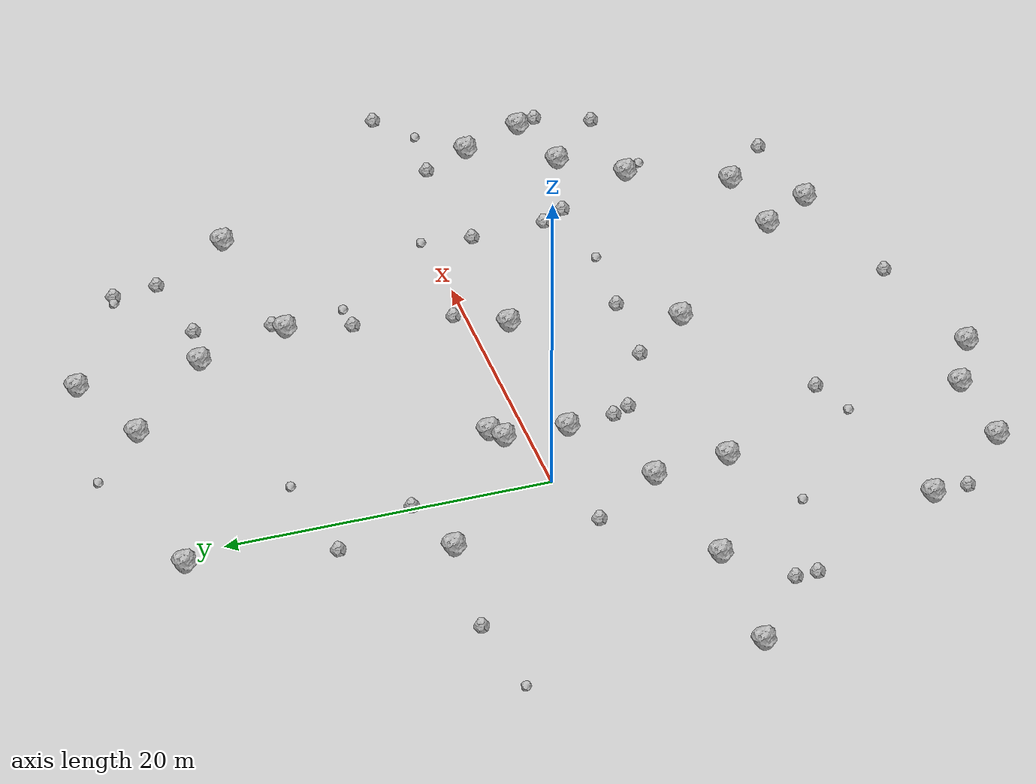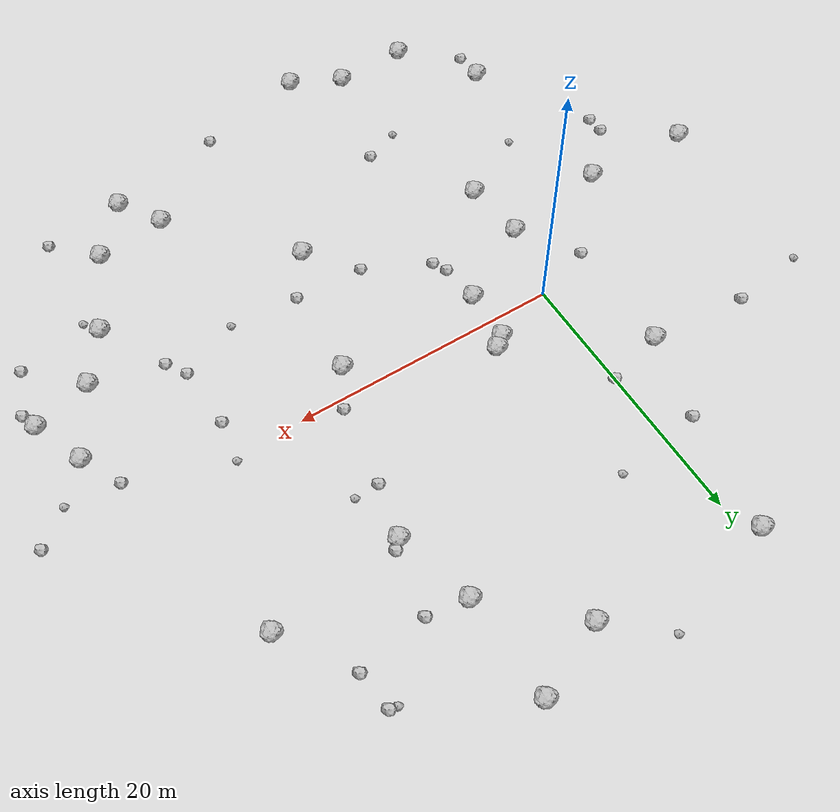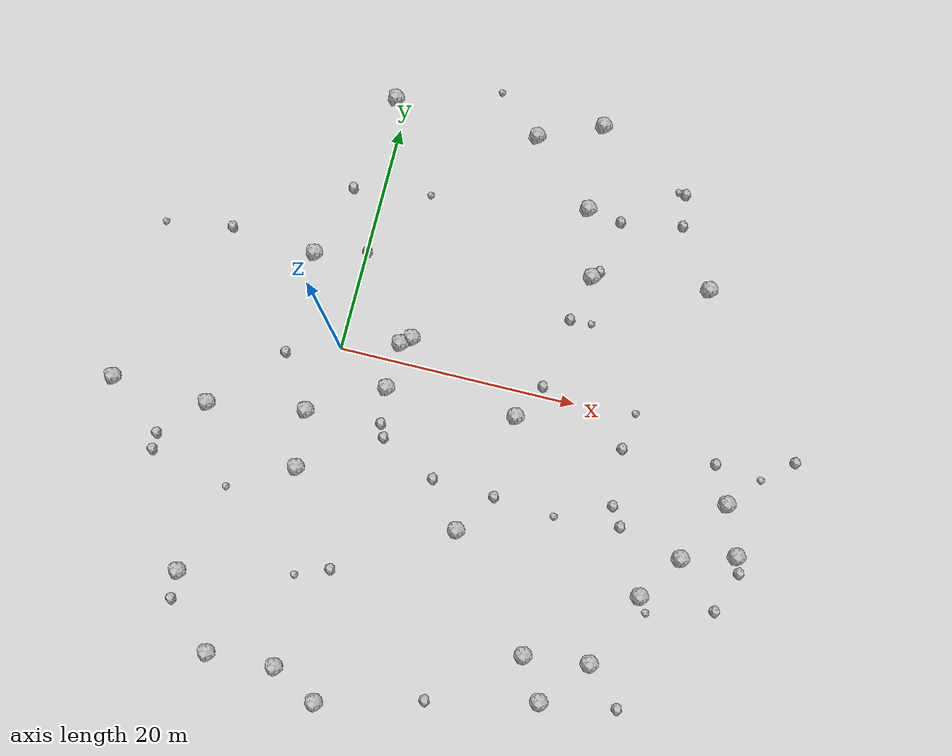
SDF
<sdf version="1.6">
 <world name="default">
  <include><uri>model://custom_ground</uri></include>
  <include><uri>model://sun</uri></include>
  <model name="rock1_0_0">
   <include><uri>model://rock1</uri><pose>4.722769837261527 1.522629581273435 0.5 0 0 0</pose></include>
  </model>
  <model name="rock1_0_1">
   <include><uri>model://rock1</uri><pose>-3.9891688747409297 -26.43252200253485 0.5 0 0 0</pose></include>
  </model>
  <model name="rock1_0_2">
   <include><uri>model://rock1</uri><pose>-9.582961832154771 -7.129383189320034 0.5 0 0 0</pose></include>
  </model>
  <model name="rock1_0_3">
   <include><uri>model://rock1</uri><pose>25.67066685512269 -20.027030334701024 0.5 0 0 0</pose></include>
  </model>
  <model name="rock1_0_4">
   <include><uri>model://rock1</uri><pose>4.540631685627254 -2.3999195949057714 0.5 0 0 0</pose></include>
  </model>
  <model name="rock1_0_5">
   <include><uri>model://rock1</uri><pose>20.43594853096844 -20.653183225990098 0.5 0 0 0</pose></include>
  </model>
  <model name="rock1_0_6">
   <include><uri>model://rock1</uri><pose>-17.76359626926095 -6.890915561591534 0.5 0 0 0</pose></include>
  </model>
  <model name="rock1_0_7">
   <include><uri>model://rock1</uri><pose>-1.022560300940608 22.69387455753236 0.5 0 0 0</pose></include>
  </model>
  <model name="rock1_0_8">
   <include><uri>model://rock1</uri><pose>-0.978680866877589 -10.558752813981215 0.5 0 0 0</pose></include>
  </model>
  <model name="rock1_0_9">
   <include><uri>model://rock1</uri><pose>17.17996941721217 24.4861453439568 0.5 0 0 0</pose></include>
  </model>
  <model name="rock1_0_10">
   <include><uri>model://rock1</uri><pose>5.264699876738938 -28.059158618863126 0.5 0 0 0</pose></include>
  </model>
  <model name="rock1_0_11">
   <include><uri>model://rock1</uri><pose>5.562285287720584 2.2056119319856577 0.5 0 0 0</pose></include>
  </model>
  <model name="rock1_0_12">
   <include><uri>model://rock1</uri><pose>12.961953235114379 -12.391206726731639 0.5 0 0 0</pose></include>
  </model>
  <model name="rock1_0_13">
   <include><uri>model://rock1</uri><pose>17.484339586572354 16.787691900462292 0.5 0 0 0</pose></include>
  </model>
  <model name="rock1_0_14">
   <include><uri>model://rock1</uri><pose>1.5112361324239032 -26.19524163940208 0.5 0 0 0</pose></include>
  </model>
  <model name="rock1_0_15">
   <include><uri>model://rock1</uri><pose>11.773759768425364 22.182301390779187 0.5 0 0 0</pose></include>
  </model>
  <model name="rock1_0_16">
   <include><uri>model://rock1</uri><pose>31.034075050161363 -10.28529207520964 0.5 0 0 0</pose></include>
  </model>
  <model name="rock1_0_17">
   <include><uri>model://rock1</uri><pose>28.450034182874177 -13.984544735497217 0.5 0 0 0</pose></include>
  </model>
  <model name="rock1_0_18">
   <include><uri>model://rock1</uri><pose>22.43879692771324 -23.821146042457407 0.5 0 0 0</pose></include>
  </model>
  <model name="rock1_0_19">
   <include><uri>model://rock1</uri><pose>35.40079748332063 -9.05072511468316 0.5 0 0 0</pose></include>
  </model>
  <model name="rock1_0_20">
   <include><uri>model://rock1</uri><pose>33.85666951743444 -5.115912305402052 0.5 0 0 0</pose></include>
  </model>
  <model name="rock1_0_21">
   <include><uri>model://rock1</uri><pose>-4.289096859611449 7.40284368862784 0.5 0 0 0</pose></include>
  </model>
  <model name="rock1_0_22">
   <include><uri>model://rock1</uri><pose>-1.468073630650526 -5.819344412199193 0.5 0 0 0</pose></include>
  </model>
  <model name="rock1_0_23">
   <include><uri>model://rock1</uri><pose>-8.040685558774154 -20.862407967158795 0.5 0 0 0</pose></include>
  </model>
  <model name="rock1_0_24">
   <include><uri>model://rock1</uri><pose>15.519145385335563 -2.1865867576316163 0.5 0 0 0</pose></include>
  </model>
  <model name="rock1_0_25">
   <include><uri>model://rock1</uri><pose>28.956954654316732 12.207446789412344 0.5 0 0 0</pose></include>
  </model>
  <model name="rock1_0_26">
   <include><uri>model://rock1</uri><pose>19.06600376842905 10.957989359607112 0.5 0 0 0</pose></include>
  </model>
  <model name="rock2_0_0">
   <include><uri>model://rock2</uri><pose>35.86238626600615 -10.31656989583508 0.3 0 0 0</pose></include>
  </model>
  <model name="rock2_0_1">
   <include><uri>model://rock2</uri><pose>20.45037724544808 16.342073221463536 0.3 0 0 0</pose></include>
  </model>
  <model name="rock2_0_2">
   <include><uri>model://rock2</uri><pose>4.8176310084578695 -5.3904361732760755 0.3 0 0 0</pose></include>
  </model>
  <model name="rock2_0_3">
   <include><uri>model://rock2</uri><pose>15.289379381229821 -9.034519548509927 0.3 0 0 0</pose></include>
  </model>
  <model name="rock2_0_4">
   <include><uri>model://rock2</uri><pose>38.687562532440204 -0.4293123871591469 0.3 0 0 0</pose></include>
  </model>
  <model name="rock2_0_5">
   <include><uri>model://rock2</uri><pose>17.140352257330328 0.8178198604435174 0.3 0 0 0</pose></include>
  </model>
  <model name="rock2_0_6">
   <include><uri>model://rock2</uri><pose>-12.949964424313361 -10.536893656231161 0.3 0 0 0</pose></include>
  </model>
  <model name="rock2_0_7">
   <include><uri>model://rock2</uri><pose>5.3269602024719624 -6.46967466327839 0.3 0 0 0</pose></include>
  </model>
  <model name="rock2_0_8">
   <include><uri>model://rock2</uri><pose>34.53421884672233 -13.71361628409009 0.3 0 0 0</pose></include>
  </model>
  <model name="rock2_0_9">
   <include><uri>model://rock2</uri><pose>25.687002975138938 17.2590276496975 0.3 0 0 0</pose></include>
  </model>
  <model name="rock2_0_10">
   <include><uri>model://rock2</uri><pose>25.366847194745503 20.083294864860548 0.3 0 0 0</pose></include>
  </model>
  <model name="rock2_0_11">
   <include><uri>model://rock2</uri><pose>25.788246771329867 -8.960757452583355 0.3 0 0 0</pose></include>
  </model>
  <model name="rock2_0_12">
   <include><uri>model://rock2</uri><pose>3.815596667148636 -17.82633322352133 0.3 0 0 0</pose></include>
  </model>
  <model name="rock2_0_13">
   <include><uri>model://rock2</uri><pose>18.103687575927772 6.9432492160919 0.3 0 0 0</pose></include>
  </model>
  <model name="rock2_0_14">
   <include><uri>model://rock2</uri><pose>-2.5666381233859603 13.869461619103923 0.3 0 0 0</pose></include>
  </model>
  <model name="rock2_0_15">
   <include><uri>model://rock2</uri><pose>24.867016889402926 -7.447371049224646 0.3 0 0 0</pose></include>
  </model>
  <model name="rock2_0_16">
   <include><uri>model://rock2</uri><pose>13.661434525210232 -25.874441411093745 0.3 0 0 0</pose></include>
  </model>
  <model name="rock2_0_17">
   <include><uri>model://rock2</uri><pose>-7.97741004208795 -23.080300150398287 0.3 0 0 0</pose></include>
  </model>
  <model name="rock2_0_18">
   <include><uri>model://rock2</uri><pose>24.63339694578154 -2.6954364390479384 0.3 0 0 0</pose></include>
  </model>
  <model name="rock2_0_19">
   <include><uri>model://rock2</uri><pose>10.080478093286398 -8.807532282692733 0.3 0 0 0</pose></include>
  </model>
  <model name="rock2_0_20">
   <include><uri>model://rock2</uri><pose>-12.905187410015495 -11.91290760320615 0.3 0 0 0</pose></include>
  </model>
  <model name="rock2_0_21">
   <include><uri>model://rock2</uri><pose>0.04217602326026437 8.631822806264324 0.3 0 0 0</pose></include>
  </model>
  <model name="rock2_0_22">
   <include><uri>model://rock2</uri><pose>28.50760428518955 -22.906934376159974 0.3 0 0 0</pose></include>
  </model>
  <model name="rock2_0_23">
   <include><uri>model://rock2</uri><pose>32.35939744405562 -2.1065265471798256 0.3 0 0 0</pose></include>
  </model>
  <model name="rock2_0_24">
   <include><uri>model://rock2</uri><pose>-4.427346339110921 -1.4577572983355154 0.3 0 0 0</pose></include>
  </model>
  <model name="rock2_0_25">
   <include><uri>model://rock2</uri><pose>19.64690390058169 11.599648767487999 0.3 0 0 0</pose></include>
  </model>
  <model name="rock2_0_26">
   <include><uri>model://rock2</uri><pose>-11.725143779301456 8.029404273288996 0.3 0 0 0</pose></include>
  </model>
  <model name="rock3_0_0">
   <include><uri>model://rock3</uri><pose>19.91234931486369 6.9841214080982965 0.2 0 0 0</pose></include>
  </model>
  <model name="rock3_0_1">
   <include><uri>model://rock3</uri><pose>-6.215285457167763 -13.44481928705282 0.2 0 0 0</pose></include>
  </model>
  <model name="rock3_0_2">
   <include><uri>model://rock3</uri><pose>7.857548536085989 25.497781062125483 0.2 0 0 0</pose></include>
  </model>
  <model name="rock3_0_3">
   <include><uri>model://rock3</uri><pose>4.053220220570687 14.816899280372468 0.2 0 0 0</pose></include>
  </model>
  <model name="rock3_0_4">
   <include><uri>model://rock3</uri><pose>24.770627603300007 20.16519344287679 0.2 0 0 0</pose></include>
  </model>
  <model name="rock3_0_5">
   <include><uri>model://rock3</uri><pose>36.209095037707755 -2.527490627004717 0.2 0 0 0</pose></include>
  </model>
  <model name="rock3_0_6">
   <include><uri>model://rock3</uri><pose>-17.449252870921956 7.140385223047815 0.2 0 0 0</pose></include>
  </model>
  <model name="rock3_0_7">
   <include><uri>model://rock3</uri><pose>29.196147014690965 -15.17419158757059 0.2 0 0 0</pose></include>
  </model>
  <model name="rock3_0_8">
   <include><uri>model://rock3</uri><pose>25.110101168900542 0.4240663873260644 0.2 0 0 0</pose></include>
  </model>
  <model name="rock3_0_9">
   <include><uri>model://rock3</uri><pose>20.384824183155516 -9.44966196952872 0.2 0 0 0</pose></include>
  </model>
  <model name="rock3_0_10">
   <include><uri>model://rock3</uri><pose>1.095785843801707 -18.97102816641098 0.2 0 0 0</pose></include>
  </model>
 </world>
</sdf>
